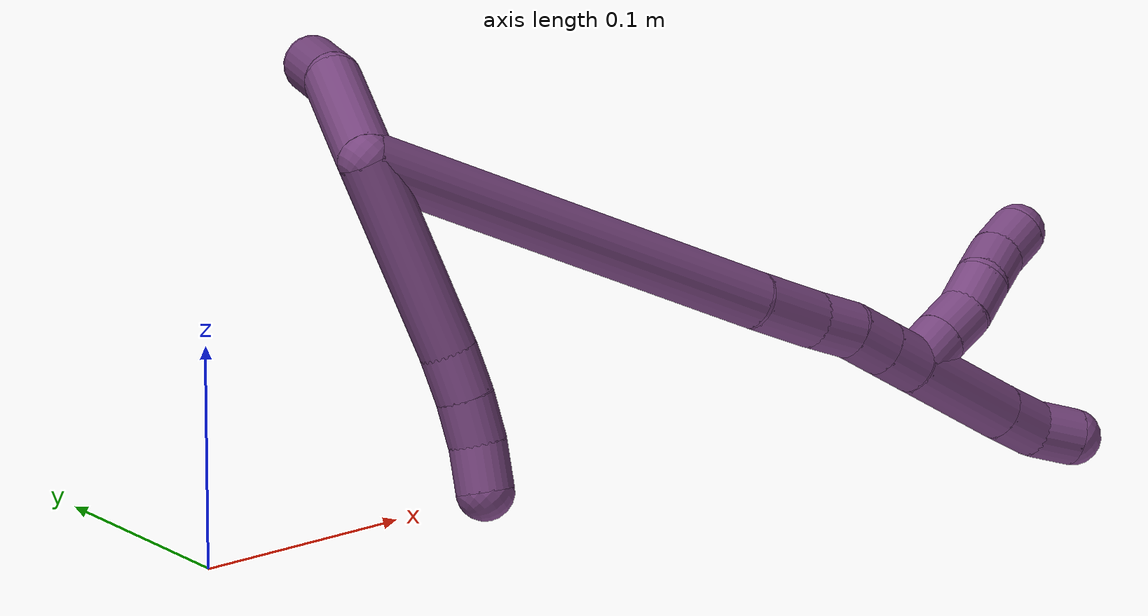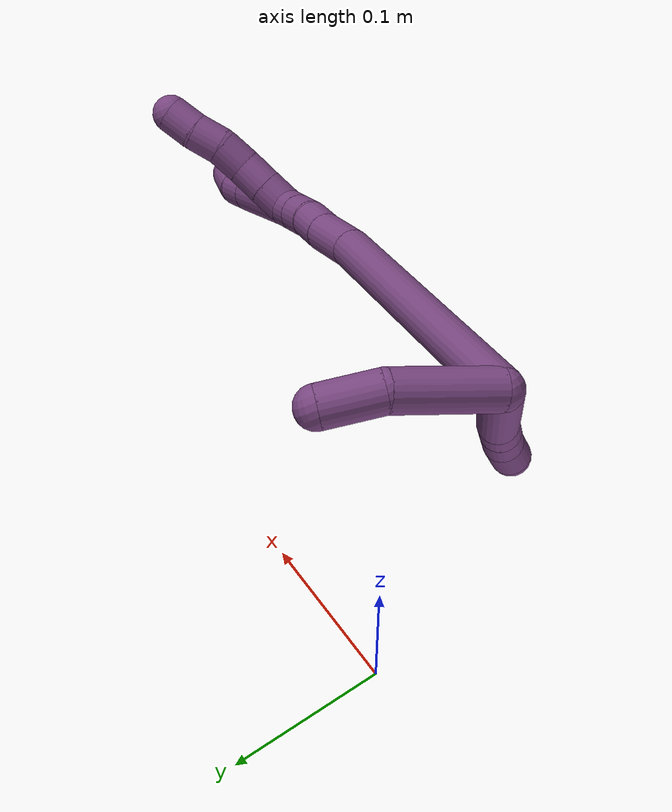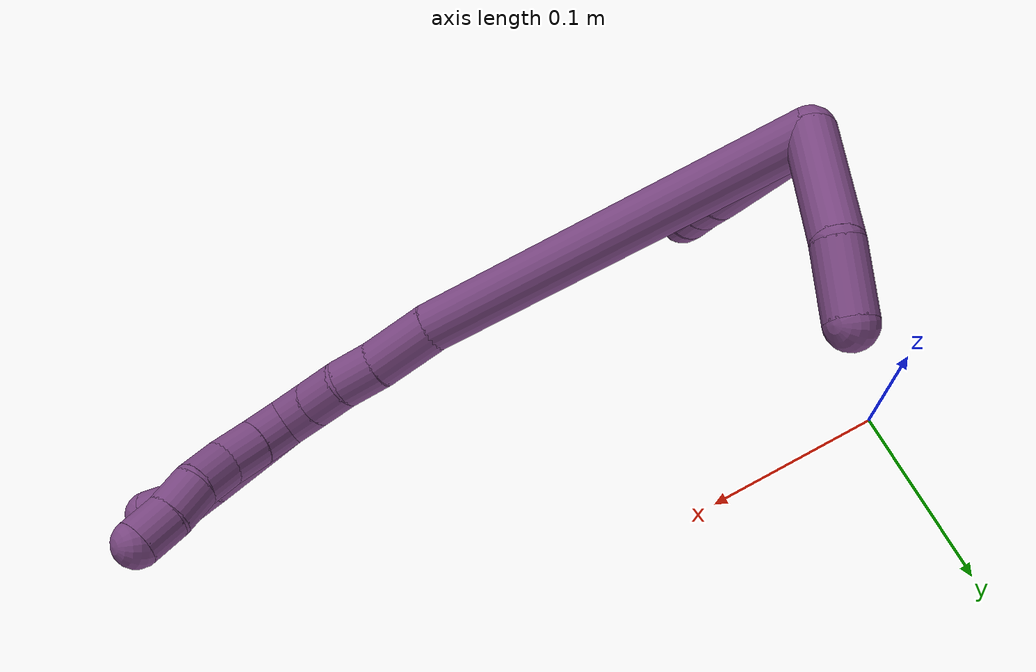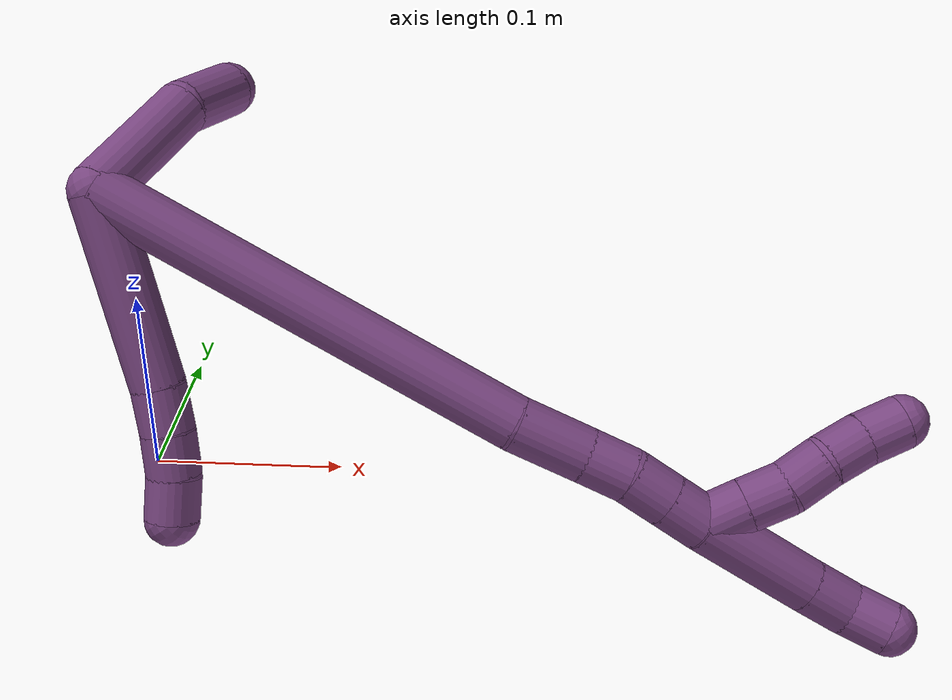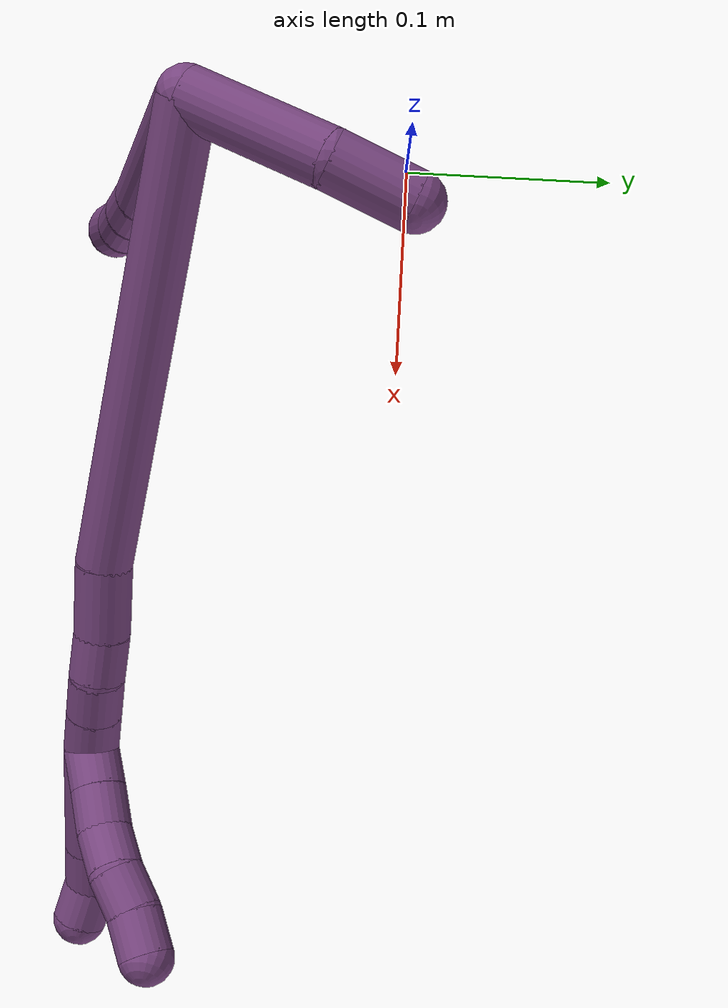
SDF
<sdf version="1.7">
 <world name="default">
  <model name="20">
   <static>0</static>
   <link name="20">
    <collision name="collision-cylinder-e_1_2_8">
     <pose>0.030401 -0.028435 -0.015167 2.06079 0.756244 1.16965</pose>
     <geometry><cylinder><radius>0.0125</radius><length>0.088608</length></cylinder></geometry>
     <surface>
      <friction><ode><mu>1.16</mu><mu2>1.16</mu2><slip1>0</slip1><slip2>0</slip2></ode></friction>
      <contact><ode><kp>1e+06</kp><kd>1</kd><max_vel>0</max_vel><min_depth>0.001</min_depth></ode></contact>
     </surface>
    </collision>
    <visual name="visual-cylinder-e_1_2_8">
     <pose>0.030401 -0.028435 -0.015167 2.06079 0.756244 1.16965</pose>
     <geometry><cylinder><radius>0.0125</radius><length>0.088608</length></cylinder></geometry>
     <material><ambient>0.478431 0.278431 0.509804 1</ambient></material>
    </visual>
    <collision name="collision-cylinder-e_2_8_9">
     <pose>0.067296 -0.063727 -0.034606 2.12802 0.677086 1.13044</pose>
     <geometry><cylinder><radius>0.0125</radius><length>0.02073</length></cylinder></geometry>
     <surface>
      <friction><ode><mu>1.16</mu><mu2>1.16</mu2><slip1>0</slip1><slip2>0</slip2></ode></friction>
      <contact><ode><kp>1e+06</kp><kd>1</kd><max_vel>0</max_vel><min_depth>0.001</min_depth></ode></contact>
     </surface>
    </collision>
    <visual name="visual-cylinder-e_2_8_9">
     <pose>0.067296 -0.063727 -0.034606 2.12802 0.677086 1.13044</pose>
     <geometry><cylinder><radius>0.0125</radius><length>0.02073</length></cylinder></geometry>
     <material><ambient>0.478431 0.278431 0.509804 1</ambient></material>
    </visual>
    <collision name="collision-cylinder-e_3_9_10">
     <pose>0.079958 -0.076956 -0.043779 2.22646 0.654499 1.20709</pose>
     <geometry><cylinder><radius>0.0125</radius><length>0.020265</length></cylinder></geometry>
     <surface>
      <friction><ode><mu>1.16</mu><mu2>1.16</mu2><slip1>0</slip1><slip2>0</slip2></ode></friction>
      <contact><ode><kp>1e+06</kp><kd>1</kd><max_vel>0</max_vel><min_depth>0.001</min_depth></ode></contact>
     </surface>
    </collision>
    <visual name="visual-cylinder-e_3_9_10">
     <pose>0.079958 -0.076956 -0.043779 2.22646 0.654499 1.20709</pose>
     <geometry><cylinder><radius>0.0125</radius><length>0.020265</length></cylinder></geometry>
     <material><ambient>0.478431 0.278431 0.509804 1</ambient></material>
    </visual>
    <collision name="collision-cylinder-e_4_10_6">
     <pose>0.090995 -0.089797 -0.054881 2.33495 0.49764 1.07413</pose>
     <geometry><cylinder><radius>0.0125</radius><length>0.020397</length></cylinder></geometry>
     <surface>
      <friction><ode><mu>1.16</mu><mu2>1.16</mu2><slip1>0</slip1><slip2>0</slip2></ode></friction>
      <contact><ode><kp>1e+06</kp><kd>1</kd><max_vel>0</max_vel><min_depth>0.001</min_depth></ode></contact>
     </surface>
    </collision>
    <visual name="visual-cylinder-e_4_10_6">
     <pose>0.090995 -0.089797 -0.054881 2.33495 0.49764 1.07413</pose>
     <geometry><cylinder><radius>0.0125</radius><length>0.020397</length></cylinder></geometry>
     <material><ambient>0.478431 0.278431 0.509804 1</ambient></material>
    </visual>
    <collision name="collision-cylinder-e_1_2_11">
     <pose>0.013557 0.025964 0.012923 -1.10897 0.437267 -0.273477</pose>
     <geometry><cylinder><radius>0.0125</radius><length>0.064029</length></cylinder></geometry>
     <surface>
      <friction><ode><mu>1.16</mu><mu2>1.16</mu2><slip1>0</slip1><slip2>0</slip2></ode></friction>
      <contact><ode><kp>1e+06</kp><kd>1</kd><max_vel>0</max_vel><min_depth>0.001</min_depth></ode></contact>
     </surface>
    </collision>
    <visual name="visual-cylinder-e_1_2_11">
     <pose>0.013557 0.025964 0.012923 -1.10897 0.437267 -0.273477</pose>
     <geometry><cylinder><radius>0.0125</radius><length>0.064029</length></cylinder></geometry>
     <material><ambient>0.478431 0.278431 0.509804 1</ambient></material>
    </visual>
    <collision name="collision-cylinder-e_2_11_5">
     <pose>0.039177 0.064847 0.02917 -1.319 0.735166 -0.580265</pose>
     <geometry><cylinder><radius>0.0125</radius><length>0.035971</length></cylinder></geometry>
     <surface>
      <friction><ode><mu>1.16</mu><mu2>1.16</mu2><slip1>0</slip1><slip2>0</slip2></ode></friction>
      <contact><ode><kp>1e+06</kp><kd>1</kd><max_vel>0</max_vel><min_depth>0.001</min_depth></ode></contact>
     </surface>
    </collision>
    <visual name="visual-cylinder-e_2_11_5">
     <pose>0.039177 0.064847 0.02917 -1.319 0.735166 -0.580265</pose>
     <geometry><cylinder><radius>0.0125</radius><length>0.035971</length></cylinder></geometry>
     <material><ambient>0.478431 0.278431 0.509804 1</ambient></material>
    </visual>
    <collision name="collision-cylinder-e_1_2_12">
     <pose>0.076916 -0.050684 0.044691 0.848155 0.849972 0.403094</pose>
     <geometry><cylinder><radius>0.0125</radius><length>0.204766</length></cylinder></geometry>
     <surface>
      <friction><ode><mu>1.16</mu><mu2>1.16</mu2><slip1>0</slip1><slip2>0</slip2></ode></friction>
      <contact><ode><kp>1e+06</kp><kd>1</kd><max_vel>0</max_vel><min_depth>0.001</min_depth></ode></contact>
     </surface>
    </collision>
    <visual name="visual-cylinder-e_1_2_12">
     <pose>0.076916 -0.050684 0.044691 0.848155 0.849972 0.403094</pose>
     <geometry><cylinder><radius>0.0125</radius><length>0.204766</length></cylinder></geometry>
     <material><ambient>0.478431 0.278431 0.509804 1</ambient></material>
    </visual>
    <collision name="collision-cylinder-e_2_12_13">
     <pose>0.16759 -0.107717 0.09696 0.697332 0.947675 0.368595</pose>
     <geometry><cylinder><radius>0.0125</radius><length>0.033882</length></cylinder></geometry>
     <surface>
      <friction><ode><mu>1.16</mu><mu2>1.16</mu2><slip1>0</slip1><slip2>0</slip2></ode></friction>
      <contact><ode><kp>1e+06</kp><kd>1</kd><max_vel>0</max_vel><min_depth>0.001</min_depth></ode></contact>
     </surface>
    </collision>
    <visual name="visual-cylinder-e_2_12_13">
     <pose>0.16759 -0.107717 0.09696 0.697332 0.947675 0.368595</pose>
     <geometry><cylinder><radius>0.0125</radius><length>0.033882</length></cylinder></geometry>
     <material><ambient>0.478431 0.278431 0.509804 1</ambient></material>
    </visual>
    <collision name="collision-cylinder-e_3_13_14">
     <pose>0.189421 -0.118672 0.109688 0.729758 0.862947 0.348174</pose>
     <geometry><cylinder><radius>0.0125</radius><length>0.021254</length></cylinder></geometry>
     <surface>
      <friction><ode><mu>1.16</mu><mu2>1.16</mu2><slip1>0</slip1><slip2>0</slip2></ode></friction>
      <contact><ode><kp>1e+06</kp><kd>1</kd><max_vel>0</max_vel><min_depth>0.001</min_depth></ode></contact>
     </surface>
    </collision>
    <visual name="visual-cylinder-e_3_13_14">
     <pose>0.189421 -0.118672 0.109688 0.729758 0.862947 0.348174</pose>
     <geometry><cylinder><radius>0.0125</radius><length>0.021254</length></cylinder></geometry>
     <material><ambient>0.478431 0.278431 0.509804 1</ambient></material>
    </visual>
    <collision name="collision-cylinder-e_4_14_15">
     <pose>0.205784 -0.127853 0.118074 0.955102 0.976358 0.536398</pose>
     <geometry><cylinder><radius>0.0125</radius><length>0.020009</length></cylinder></geometry>
     <surface>
      <friction><ode><mu>1.16</mu><mu2>1.16</mu2><slip1>0</slip1><slip2>0</slip2></ode></friction>
      <contact><ode><kp>1e+06</kp><kd>1</kd><max_vel>0</max_vel><min_depth>0.001</min_depth></ode></contact>
     </surface>
    </collision>
    <visual name="visual-cylinder-e_4_14_15">
     <pose>0.205784 -0.127853 0.118074 0.955102 0.976358 0.536398</pose>
     <geometry><cylinder><radius>0.0125</radius><length>0.020009</length></cylinder></geometry>
     <material><ambient>0.478431 0.278431 0.509804 1</ambient></material>
    </visual>
    <collision name="collision-cylinder-e_5_15_1">
     <pose>0.222383 -0.137033 0.124567 0.955276 0.974511 0.535368</pose>
     <geometry><cylinder><radius>0.0125</radius><length>0.020089</length></cylinder></geometry>
     <surface>
      <friction><ode><mu>1.16</mu><mu2>1.16</mu2><slip1>0</slip1><slip2>0</slip2></ode></friction>
      <contact><ode><kp>1e+06</kp><kd>1</kd><max_vel>0</max_vel><min_depth>0.001</min_depth></ode></contact>
     </surface>
    </collision>
    <visual name="visual-cylinder-e_5_15_1">
     <pose>0.222383 -0.137033 0.124567 0.955276 0.974511 0.535368</pose>
     <geometry><cylinder><radius>0.0125</radius><length>0.020089</length></cylinder></geometry>
     <material><ambient>0.478431 0.278431 0.509804 1</ambient></material>
    </visual>
    <collision name="collision-cylinder-e_1_1_16">
     <pose>0.234576 -0.139914 0.136877 -0.188155 0.39863 -0.038115</pose>
     <geometry><cylinder><radius>0.0125</radius><length>0.02</length></cylinder></geometry>
     <surface>
      <friction><ode><mu>1.16</mu><mu2>1.16</mu2><slip1>0</slip1><slip2>0</slip2></ode></friction>
      <contact><ode><kp>1e+06</kp><kd>1</kd><max_vel>0</max_vel><min_depth>0.001</min_depth></ode></contact>
     </surface>
    </collision>
    <visual name="visual-cylinder-e_1_1_16">
     <pose>0.234576 -0.139914 0.136877 -0.188155 0.39863 -0.038115</pose>
     <geometry><cylinder><radius>0.0125</radius><length>0.02</length></cylinder></geometry>
     <material><ambient>0.478431 0.278431 0.509804 1</ambient></material>
    </visual>
    <collision name="collision-cylinder-e_2_16_17">
     <pose>0.242376 -0.136717 0.155012 -0.160851 0.402649 -0.032896</pose>
     <geometry><cylinder><radius>0.0125</radius><length>0.02</length></cylinder></geometry>
     <surface>
      <friction><ode><mu>1.16</mu><mu2>1.16</mu2><slip1>0</slip1><slip2>0</slip2></ode></friction>
      <contact><ode><kp>1e+06</kp><kd>1</kd><max_vel>0</max_vel><min_depth>0.001</min_depth></ode></contact>
     </surface>
    </collision>
    <visual name="visual-cylinder-e_2_16_17">
     <pose>0.242376 -0.136717 0.155012 -0.160851 0.402649 -0.032896</pose>
     <geometry><cylinder><radius>0.0125</radius><length>0.02</length></cylinder></geometry>
     <material><ambient>0.478431 0.278431 0.509804 1</ambient></material>
    </visual>
    <collision name="collision-cylinder-e_3_17_18">
     <pose>0.249046 -0.131981 0.173137 -0.34619 0.278804 -0.049056</pose>
     <geometry><cylinder><radius>0.0125</radius><length>0.02</length></cylinder></geometry>
     <surface>
      <friction><ode><mu>1.16</mu><mu2>1.16</mu2><slip1>0</slip1><slip2>0</slip2></ode></friction>
      <contact><ode><kp>1e+06</kp><kd>1</kd><max_vel>0</max_vel><min_depth>0.001</min_depth></ode></contact>
     </surface>
    </collision>
    <visual name="visual-cylinder-e_3_17_18">
     <pose>0.249046 -0.131981 0.173137 -0.34619 0.278804 -0.049056</pose>
     <geometry><cylinder><radius>0.0125</radius><length>0.02</length></cylinder></geometry>
     <material><ambient>0.478431 0.278431 0.509804 1</ambient></material>
    </visual>
    <collision name="collision-cylinder-e_4_18_19">
     <pose>0.256647 -0.12507 0.190128 -0.43045 0.506219 -0.11297</pose>
     <geometry><cylinder><radius>0.0125</radius><length>0.02</length></cylinder></geometry>
     <surface>
      <friction><ode><mu>1.16</mu><mu2>1.16</mu2><slip1>0</slip1><slip2>0</slip2></ode></friction>
      <contact><ode><kp>1e+06</kp><kd>1</kd><max_vel>0</max_vel><min_depth>0.001</min_depth></ode></contact>
     </surface>
    </collision>
    <visual name="visual-cylinder-e_4_18_19">
     <pose>0.256647 -0.12507 0.190128 -0.43045 0.506219 -0.11297</pose>
     <geometry><cylinder><radius>0.0125</radius><length>0.02</length></cylinder></geometry>
     <material><ambient>0.478431 0.278431 0.509804 1</ambient></material>
    </visual>
    <collision name="collision-cylinder-e_5_19_4">
     <pose>0.266161 -0.11917 0.20663 -0.257266 0.485365 -0.064021</pose>
     <geometry><cylinder><radius>0.0125</radius><length>0.02</length></cylinder></geometry>
     <surface>
      <friction><ode><mu>1.16</mu><mu2>1.16</mu2><slip1>0</slip1><slip2>0</slip2></ode></friction>
      <contact><ode><kp>1e+06</kp><kd>1</kd><max_vel>0</max_vel><min_depth>0.001</min_depth></ode></contact>
     </surface>
    </collision>
    <visual name="visual-cylinder-e_5_19_4">
     <pose>0.266161 -0.11917 0.20663 -0.257266 0.485365 -0.064021</pose>
     <geometry><cylinder><radius>0.0125</radius><length>0.02</length></cylinder></geometry>
     <material><ambient>0.478431 0.278431 0.509804 1</ambient></material>
    </visual>
    <collision name="collision-cylinder-e_1_1_20">
     <pose>0.255069 -0.152838 0.13706 0.881243 1.03364 0.523693</pose>
     <geometry><cylinder><radius>0.0125</radius><length>0.056742</length></cylinder></geometry>
     <surface>
      <friction><ode><mu>1.16</mu><mu2>1.16</mu2><slip1>0</slip1><slip2>0</slip2></ode></friction>
      <contact><ode><kp>1e+06</kp><kd>1</kd><max_vel>0</max_vel><min_depth>0.001</min_depth></ode></contact>
     </surface>
    </collision>
    <visual name="visual-cylinder-e_1_1_20">
     <pose>0.255069 -0.152838 0.13706 0.881243 1.03364 0.523693</pose>
     <geometry><cylinder><radius>0.0125</radius><length>0.056742</length></cylinder></geometry>
     <material><ambient>0.478431 0.278431 0.509804 1</ambient></material>
    </visual>
    <collision name="collision-cylinder-e_2_20_21">
     <pose>0.289061 -0.168507 0.150231 0.848669 1.01642 0.493055</pose>
     <geometry><cylinder><radius>0.0125</radius><length>0.02262</length></cylinder></geometry>
     <surface>
      <friction><ode><mu>1.16</mu><mu2>1.16</mu2><slip1>0</slip1><slip2>0</slip2></ode></friction>
      <contact><ode><kp>1e+06</kp><kd>1</kd><max_vel>0</max_vel><min_depth>0.001</min_depth></ode></contact>
     </surface>
    </collision>
    <visual name="visual-cylinder-e_2_20_21">
     <pose>0.289061 -0.168507 0.150231 0.848669 1.01642 0.493055</pose>
     <geometry><cylinder><radius>0.0125</radius><length>0.02262</length></cylinder></geometry>
     <material><ambient>0.478431 0.278431 0.509804 1</ambient></material>
    </visual>
    <collision name="collision-cylinder-e_3_21_3">
     <pose>0.305234 -0.178687 0.159721 0.799382 0.688584 0.300658</pose>
     <geometry><cylinder><radius>0.0125</radius><length>0.020638</length></cylinder></geometry>
     <surface>
      <friction><ode><mu>1.16</mu><mu2>1.16</mu2><slip1>0</slip1><slip2>0</slip2></ode></friction>
      <contact><ode><kp>1e+06</kp><kd>1</kd><max_vel>0</max_vel><min_depth>0.001</min_depth></ode></contact>
     </surface>
    </collision>
    <visual name="visual-cylinder-e_3_21_3">
     <pose>0.305234 -0.178687 0.159721 0.799382 0.688584 0.300658</pose>
     <geometry><cylinder><radius>0.0125</radius><length>0.020638</length></cylinder></geometry>
     <material><ambient>0.478431 0.278431 0.509804 1</ambient></material>
    </visual>
    <collision name="collision-sphere-3">
     <pose>0.311791 -0.184399 0.165276 0 -0 0</pose>
     <geometry><sphere><radius>0.0125</radius></sphere></geometry>
     <surface>
      <friction><ode><mu>1.16</mu><mu2>1.16</mu2><slip1>0</slip1><slip2>0</slip2></ode></friction>
      <contact><ode><kp>1e+06</kp><kd>1</kd><max_vel>0</max_vel><min_depth>0.001</min_depth></ode></contact>
     </surface>
    </collision>
    <visual name="visual-sphere-3">
     <pose>0.311791 -0.184399 0.165276 0 -0 0</pose>
     <geometry><sphere><radius>0.0125</radius></sphere></geometry>
     <material><ambient>0.478431 0.278431 0.509804 1</ambient></material>
    </visual>
    <collision name="collision-sphere-21">
     <pose>0.298677 -0.172974 0.154166 0 -0 0</pose>
     <geometry><sphere><radius>0.0125</radius></sphere></geometry>
     <surface>
      <friction><ode><mu>1.16</mu><mu2>1.16</mu2><slip1>0</slip1><slip2>0</slip2></ode></friction>
      <contact><ode><kp>1e+06</kp><kd>1</kd><max_vel>0</max_vel><min_depth>0.001</min_depth></ode></contact>
     </surface>
    </collision>
    <visual name="visual-sphere-21">
     <pose>0.298677 -0.172974 0.154166 0 -0 0</pose>
     <geometry><sphere><radius>0.0125</radius></sphere></geometry>
     <material><ambient>0.478431 0.278431 0.509804 1</ambient></material>
    </visual>
    <collision name="collision-sphere-20">
     <pose>0.279445 -0.164039 0.146295 0 -0 0</pose>
     <geometry><sphere><radius>0.0125</radius></sphere></geometry>
     <surface>
      <friction><ode><mu>1.16</mu><mu2>1.16</mu2><slip1>0</slip1><slip2>0</slip2></ode></friction>
      <contact><ode><kp>1e+06</kp><kd>1</kd><max_vel>0</max_vel><min_depth>0.001</min_depth></ode></contact>
     </surface>
    </collision>
    <visual name="visual-sphere-20">
     <pose>0.279445 -0.164039 0.146295 0 -0 0</pose>
     <geometry><sphere><radius>0.0125</radius></sphere></geometry>
     <material><ambient>0.478431 0.278431 0.509804 1</ambient></material>
    </visual>
    <collision name="collision-sphere-4">
     <pose>0.270826 -0.116919 0.215184 0 -0 0</pose>
     <geometry><sphere><radius>0.0125</radius></sphere></geometry>
     <surface>
      <friction><ode><mu>1.16</mu><mu2>1.16</mu2><slip1>0</slip1><slip2>0</slip2></ode></friction>
      <contact><ode><kp>1e+06</kp><kd>1</kd><max_vel>0</max_vel><min_depth>0.001</min_depth></ode></contact>
     </surface>
    </collision>
    <visual name="visual-sphere-4">
     <pose>0.270826 -0.116919 0.215184 0 -0 0</pose>
     <geometry><sphere><radius>0.0125</radius></sphere></geometry>
     <material><ambient>0.478431 0.278431 0.509804 1</ambient></material>
    </visual>
    <collision name="collision-sphere-11">
     <pose>0.027114 0.051928 0.025846 0 -0 0</pose>
     <geometry><sphere><radius>0.0125</radius></sphere></geometry>
     <surface>
      <friction><ode><mu>1.16</mu><mu2>1.16</mu2><slip1>0</slip1><slip2>0</slip2></ode></friction>
      <contact><ode><kp>1e+06</kp><kd>1</kd><max_vel>0</max_vel><min_depth>0.001</min_depth></ode></contact>
     </surface>
    </collision>
    <visual name="visual-sphere-11">
     <pose>0.027114 0.051928 0.025846 0 -0 0</pose>
     <geometry><sphere><radius>0.0125</radius></sphere></geometry>
     <material><ambient>0.478431 0.278431 0.509804 1</ambient></material>
    </visual>
    <collision name="collision-sphere-6">
     <pose>0.095863 -0.096267 -0.061082 0 -0 0</pose>
     <geometry><sphere><radius>0.0125</radius></sphere></geometry>
     <surface>
      <friction><ode><mu>1.16</mu><mu2>1.16</mu2><slip1>0</slip1><slip2>0</slip2></ode></friction>
      <contact><ode><kp>1e+06</kp><kd>1</kd><max_vel>0</max_vel><min_depth>0.001</min_depth></ode></contact>
     </surface>
    </collision>
    <visual name="visual-sphere-6">
     <pose>0.095863 -0.096267 -0.061082 0 -0 0</pose>
     <geometry><sphere><radius>0.0125</radius></sphere></geometry>
     <material><ambient>0.478431 0.278431 0.509804 1</ambient></material>
    </visual>
    <collision name="collision-sphere-10">
     <pose>0.086127 -0.083327 -0.04868 0 -0 0</pose>
     <geometry><sphere><radius>0.0125</radius></sphere></geometry>
     <surface>
      <friction><ode><mu>1.16</mu><mu2>1.16</mu2><slip1>0</slip1><slip2>0</slip2></ode></friction>
      <contact><ode><kp>1e+06</kp><kd>1</kd><max_vel>0</max_vel><min_depth>0.001</min_depth></ode></contact>
     </surface>
    </collision>
    <visual name="visual-sphere-10">
     <pose>0.086127 -0.083327 -0.04868 0 -0 0</pose>
     <geometry><sphere><radius>0.0125</radius></sphere></geometry>
     <material><ambient>0.478431 0.278431 0.509804 1</ambient></material>
    </visual>
    <collision name="collision-sphere-9">
     <pose>0.07379 -0.070584 -0.038878 0 -0 0</pose>
     <geometry><sphere><radius>0.0125</radius></sphere></geometry>
     <surface>
      <friction><ode><mu>1.16</mu><mu2>1.16</mu2><slip1>0</slip1><slip2>0</slip2></ode></friction>
      <contact><ode><kp>1e+06</kp><kd>1</kd><max_vel>0</max_vel><min_depth>0.001</min_depth></ode></contact>
     </surface>
    </collision>
    <visual name="visual-sphere-9">
     <pose>0.07379 -0.070584 -0.038878 0 -0 0</pose>
     <geometry><sphere><radius>0.0125</radius></sphere></geometry>
     <material><ambient>0.478431 0.278431 0.509804 1</ambient></material>
    </visual>
    <collision name="collision-sphere-2">
     <geometry><sphere><radius>0.0125</radius></sphere></geometry>
     <surface>
      <friction><ode><mu>1.16</mu><mu2>1.16</mu2><slip1>0</slip1><slip2>0</slip2></ode></friction>
      <contact><ode><kp>1e+06</kp><kd>1</kd><max_vel>0</max_vel><min_depth>0.001</min_depth></ode></contact>
     </surface>
    </collision>
    <visual name="visual-sphere-2">
     <geometry><sphere><radius>0.0125</radius></sphere></geometry>
     <material><ambient>0.478431 0.278431 0.509804 1</ambient></material>
    </visual>
    <collision name="collision-sphere-19">
     <pose>0.261496 -0.12142 0.198076 0 -0 0</pose>
     <geometry><sphere><radius>0.0125</radius></sphere></geometry>
     <surface>
      <friction><ode><mu>1.16</mu><mu2>1.16</mu2><slip1>0</slip1><slip2>0</slip2></ode></friction>
      <contact><ode><kp>1e+06</kp><kd>1</kd><max_vel>0</max_vel><min_depth>0.001</min_depth></ode></contact>
     </surface>
    </collision>
    <visual name="visual-sphere-19">
     <pose>0.261496 -0.12142 0.198076 0 -0 0</pose>
     <geometry><sphere><radius>0.0125</radius></sphere></geometry>
     <material><ambient>0.478431 0.278431 0.509804 1</ambient></material>
    </visual>
    <collision name="collision-sphere-8">
     <pose>0.060802 -0.056871 -0.030334 0 -0 0</pose>
     <geometry><sphere><radius>0.0125</radius></sphere></geometry>
     <surface>
      <friction><ode><mu>1.16</mu><mu2>1.16</mu2><slip1>0</slip1><slip2>0</slip2></ode></friction>
      <contact><ode><kp>1e+06</kp><kd>1</kd><max_vel>0</max_vel><min_depth>0.001</min_depth></ode></contact>
     </surface>
    </collision>
    <visual name="visual-sphere-8">
     <pose>0.060802 -0.056871 -0.030334 0 -0 0</pose>
     <geometry><sphere><radius>0.0125</radius></sphere></geometry>
     <material><ambient>0.478431 0.278431 0.509804 1</ambient></material>
    </visual>
    <collision name="collision-sphere-5">
     <pose>0.05124 0.077767 0.032493 0 -0 0</pose>
     <geometry><sphere><radius>0.0125</radius></sphere></geometry>
     <surface>
      <friction><ode><mu>1.16</mu><mu2>1.16</mu2><slip1>0</slip1><slip2>0</slip2></ode></friction>
      <contact><ode><kp>1e+06</kp><kd>1</kd><max_vel>0</max_vel><min_depth>0.001</min_depth></ode></contact>
     </surface>
    </collision>
    <visual name="visual-sphere-5">
     <pose>0.05124 0.077767 0.032493 0 -0 0</pose>
     <geometry><sphere><radius>0.0125</radius></sphere></geometry>
     <material><ambient>0.478431 0.278431 0.509804 1</ambient></material>
    </visual>
    <collision name="collision-sphere-12">
     <pose>0.153833 -0.101368 0.089382 0 -0 0</pose>
     <geometry><sphere><radius>0.0125</radius></sphere></geometry>
     <surface>
      <friction><ode><mu>1.16</mu><mu2>1.16</mu2><slip1>0</slip1><slip2>0</slip2></ode></friction>
      <contact><ode><kp>1e+06</kp><kd>1</kd><max_vel>0</max_vel><min_depth>0.001</min_depth></ode></contact>
     </surface>
    </collision>
    <visual name="visual-sphere-12">
     <pose>0.153833 -0.101368 0.089382 0 -0 0</pose>
     <geometry><sphere><radius>0.0125</radius></sphere></geometry>
     <material><ambient>0.478431 0.278431 0.509804 1</ambient></material>
    </visual>
    <collision name="collision-sphere-13">
     <pose>0.181347 -0.114066 0.104538 0 -0 0</pose>
     <geometry><sphere><radius>0.0125</radius></sphere></geometry>
     <surface>
      <friction><ode><mu>1.16</mu><mu2>1.16</mu2><slip1>0</slip1><slip2>0</slip2></ode></friction>
      <contact><ode><kp>1e+06</kp><kd>1</kd><max_vel>0</max_vel><min_depth>0.001</min_depth></ode></contact>
     </surface>
    </collision>
    <visual name="visual-sphere-13">
     <pose>0.181347 -0.114066 0.104538 0 -0 0</pose>
     <geometry><sphere><radius>0.0125</radius></sphere></geometry>
     <material><ambient>0.478431 0.278431 0.509804 1</ambient></material>
    </visual>
    <collision name="collision-sphere-14">
     <pose>0.197495 -0.123279 0.114838 0 -0 0</pose>
     <geometry><sphere><radius>0.0125</radius></sphere></geometry>
     <surface>
      <friction><ode><mu>1.16</mu><mu2>1.16</mu2><slip1>0</slip1><slip2>0</slip2></ode></friction>
      <contact><ode><kp>1e+06</kp><kd>1</kd><max_vel>0</max_vel><min_depth>0.001</min_depth></ode></contact>
     </surface>
    </collision>
    <visual name="visual-sphere-14">
     <pose>0.197495 -0.123279 0.114838 0 -0 0</pose>
     <geometry><sphere><radius>0.0125</radius></sphere></geometry>
     <material><ambient>0.478431 0.278431 0.509804 1</ambient></material>
    </visual>
    <collision name="collision-sphere-15">
     <pose>0.214072 -0.132427 0.12131 0 -0 0</pose>
     <geometry><sphere><radius>0.0125</radius></sphere></geometry>
     <surface>
      <friction><ode><mu>1.16</mu><mu2>1.16</mu2><slip1>0</slip1><slip2>0</slip2></ode></friction>
      <contact><ode><kp>1e+06</kp><kd>1</kd><max_vel>0</max_vel><min_depth>0.001</min_depth></ode></contact>
     </surface>
    </collision>
    <visual name="visual-sphere-15">
     <pose>0.214072 -0.132427 0.12131 0 -0 0</pose>
     <geometry><sphere><radius>0.0125</radius></sphere></geometry>
     <material><ambient>0.478431 0.278431 0.509804 1</ambient></material>
    </visual>
    <collision name="collision-sphere-1">
     <pose>0.230694 -0.141638 0.127824 0 -0 0</pose>
     <geometry><sphere><radius>0.0125</radius></sphere></geometry>
     <surface>
      <friction><ode><mu>1.16</mu><mu2>1.16</mu2><slip1>0</slip1><slip2>0</slip2></ode></friction>
      <contact><ode><kp>1e+06</kp><kd>1</kd><max_vel>0</max_vel><min_depth>0.001</min_depth></ode></contact>
     </surface>
    </collision>
    <visual name="visual-sphere-1">
     <pose>0.230694 -0.141638 0.127824 0 -0 0</pose>
     <geometry><sphere><radius>0.0125</radius></sphere></geometry>
     <material><ambient>0.478431 0.278431 0.509804 1</ambient></material>
    </visual>
    <collision name="collision-sphere-18">
     <pose>0.251798 -0.128719 0.18218 0 -0 0</pose>
     <geometry><sphere><radius>0.0125</radius></sphere></geometry>
     <surface>
      <friction><ode><mu>1.16</mu><mu2>1.16</mu2><slip1>0</slip1><slip2>0</slip2></ode></friction>
      <contact><ode><kp>1e+06</kp><kd>1</kd><max_vel>0</max_vel><min_depth>0.001</min_depth></ode></contact>
     </surface>
    </collision>
    <visual name="visual-sphere-18">
     <pose>0.251798 -0.128719 0.18218 0 -0 0</pose>
     <geometry><sphere><radius>0.0125</radius></sphere></geometry>
     <material><ambient>0.478431 0.278431 0.509804 1</ambient></material>
    </visual>
    <collision name="collision-sphere-16">
     <pose>0.238457 -0.13819 0.14593 0 -0 0</pose>
     <geometry><sphere><radius>0.0125</radius></sphere></geometry>
     <surface>
      <friction><ode><mu>1.16</mu><mu2>1.16</mu2><slip1>0</slip1><slip2>0</slip2></ode></friction>
      <contact><ode><kp>1e+06</kp><kd>1</kd><max_vel>0</max_vel><min_depth>0.001</min_depth></ode></contact>
     </surface>
    </collision>
    <visual name="visual-sphere-16">
     <pose>0.238457 -0.13819 0.14593 0 -0 0</pose>
     <geometry><sphere><radius>0.0125</radius></sphere></geometry>
     <material><ambient>0.478431 0.278431 0.509804 1</ambient></material>
    </visual>
    <collision name="collision-sphere-17">
     <pose>0.246294 -0.135243 0.164093 0 -0 0</pose>
     <geometry><sphere><radius>0.0125</radius></sphere></geometry>
     <surface>
      <friction><ode><mu>1.16</mu><mu2>1.16</mu2><slip1>0</slip1><slip2>0</slip2></ode></friction>
      <contact><ode><kp>1e+06</kp><kd>1</kd><max_vel>0</max_vel><min_depth>0.001</min_depth></ode></contact>
     </surface>
    </collision>
    <visual name="visual-sphere-17">
     <pose>0.246294 -0.135243 0.164093 0 -0 0</pose>
     <geometry><sphere><radius>0.0125</radius></sphere></geometry>
     <material><ambient>0.478431 0.278431 0.509804 1</ambient></material>
    </visual>
    <inertial>
     <pose>0.128225 -0.072436 0.065532 0 -0 0</pose>
     <mass>0.75</mass>
     <inertia>
      <ixx>0.000774</ixx>
      <ixy>0</ixy>
      <ixz>0</ixz>
      <iyy>0.00089</iyy>
      <iyz>0</iyz>
      <izz>-0.000225</izz>
     </inertia>
    </inertial>
   </link>
   <pose>0.019307 -0.089155 0.201406 0.535918 0.773757 0.622604</pose>
  </model>
 </world>
</sdf>
